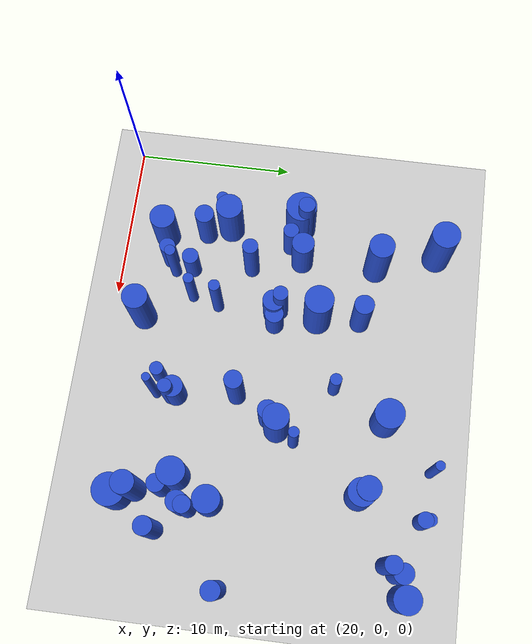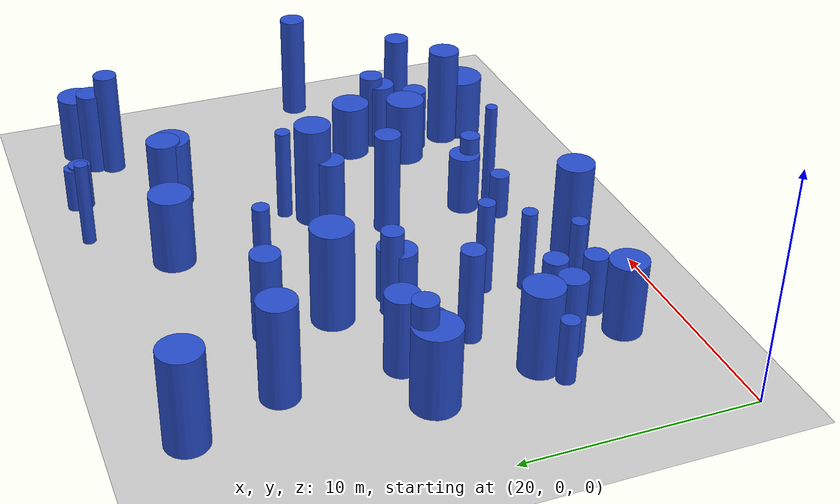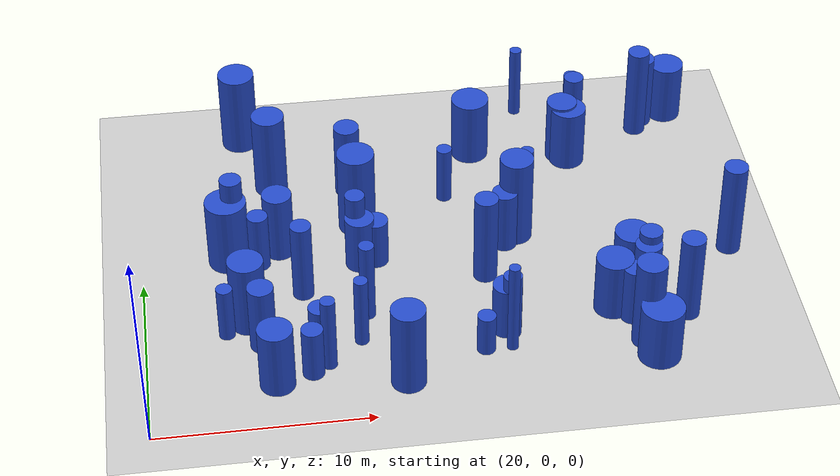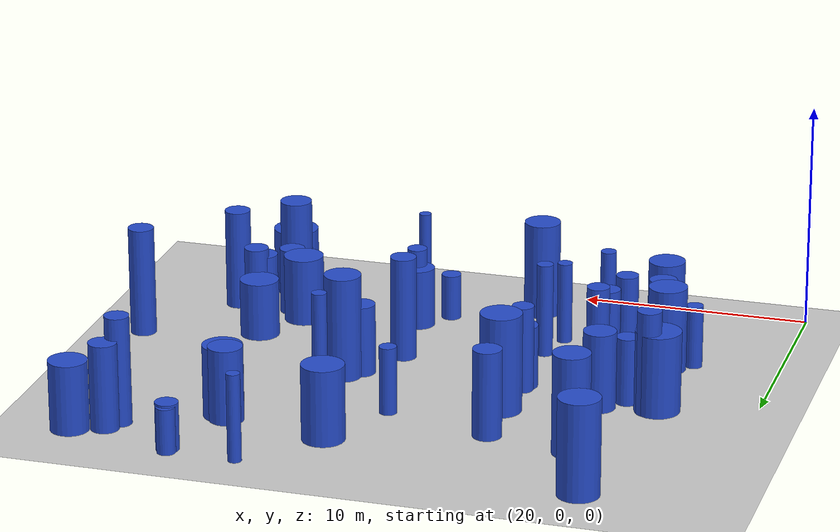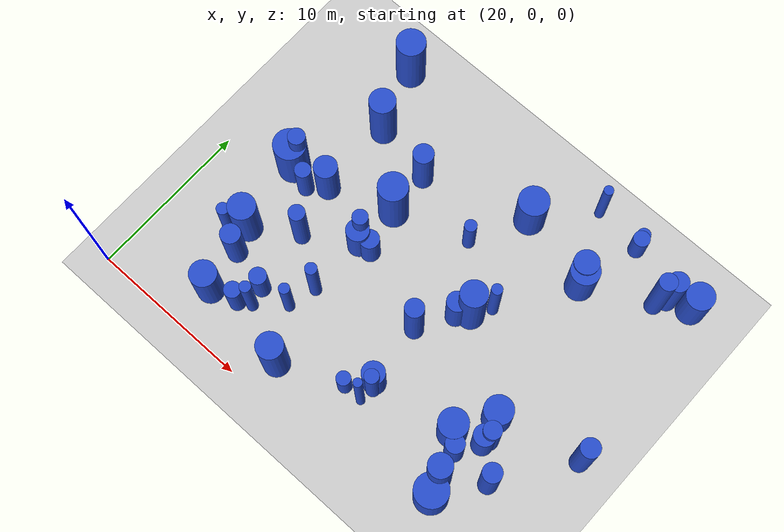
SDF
<sdf version="1.6">
 <world name="default">
  <model name="ground_plane">
   <static>1</static>
   <link name="link">
    <collision name="collision">
     <geometry><plane><normal>0 0 1</normal><size>100 100</size></plane></geometry>
     <surface><friction><ode><mu>100</mu><mu2>50</mu2></ode></friction></surface>
    </collision>
    <visual name="visual">
     <cast_shadows>0</cast_shadows>
     <geometry><plane><normal>0 0 1</normal><size>100 100</size></plane></geometry>
     <material>
      <script><uri>file://media/materials/scripts/gazebo.material</uri><name>Gazebo/Grey</name></script>
     </material>
    </visual>
   </link>
  </model>
  <model name="5">
   <static>0</static>
   <link name="link">
    <inertial>
     <mass>2</mass>
     <inertia><ixx>1.19895</ixx><ixy>0</ixy><ixz>0</ixz><iyy>1.19895</iyy><iyz>0</iyz><izz>0.27551</izz></inertia>
    </inertial>
    <collision name="collision">
     <geometry><cylinder><length>2.52333</length><radius>0.52489</radius></cylinder></geometry>
     <surface><contact><collide_without_contact>1</collide_without_contact></contact></surface>
    </collision>
    <visual name="visual">
     <geometry><cylinder><length>2.52333</length><radius>0.52489</radius></cylinder></geometry>
     <material>
      <script><uri>file://media/materials/scripts/gazebo.material</uri><name>Gazebo/Blue</name></script>
     </material>
    </visual>
    <gravity>0</gravity>
   </link>
   <pose>27.8719 4.70569 1.26166 0 -0 0</pose>
  </model>
  <model name="11">
   <static>0</static>
   <link name="link">
    <inertial>
     <mass>2</mass>
     <inertia><ixx>3.80874</ixx><ixy>0</ixy><ixz>0</ixz><iyy>3.80874</iyy><iyz>0</iyz><izz>0.499703</izz></inertia>
    </inertial>
    <collision name="collision">
     <geometry><cylinder><length>4.62097</length><radius>0.706896</radius></cylinder></geometry>
     <surface><contact><collide_without_contact>1</collide_without_contact></contact></surface>
    </collision>
    <visual name="visual">
     <geometry><cylinder><length>4.62097</length><radius>0.706896</radius></cylinder></geometry>
     <material>
      <script><uri>file://media/materials/scripts/gazebo.material</uri><name>Gazebo/Blue</name></script>
     </material>
    </visual>
    <gravity>0</gravity>
   </link>
   <pose>42.6481 3.33236 2.31048 0 -0 0</pose>
  </model>
  <model name="14">
   <static>0</static>
   <link name="link">
    <inertial>
     <mass>2</mass>
     <inertia><ixx>1.37401</ixx><ixy>0</ixy><ixz>0</ixz><iyy>1.37401</iyy><iyz>0</iyz><izz>0.143411</izz></inertia>
    </inertial>
    <collision name="collision">
     <geometry><cylinder><length>2.79532</length><radius>0.378697</radius></cylinder></geometry>
     <surface><contact><collide_without_contact>1</collide_without_contact></contact></surface>
    </collision>
    <visual name="visual">
     <geometry><cylinder><length>2.79532</length><radius>0.378697</radius></cylinder></geometry>
     <material>
      <script><uri>file://media/materials/scripts/gazebo.material</uri><name>Gazebo/Blue</name></script>
     </material>
    </visual>
    <gravity>0</gravity>
   </link>
   <pose>23.7113 6.20723 1.39766 0 -0 0</pose>
  </model>
  <model name="18">
   <static>0</static>
   <link name="link">
    <inertial>
     <mass>2</mass>
     <inertia>
      <ixx>0.755053</ixx>
      <ixy>0</ixy>
      <ixz>0</ixz>
      <iyy>0.755053</iyy>
      <iyz>0</iyz>
      <izz>0.161134</izz>
     </inertia>
    </inertial>
    <collision name="collision">
     <geometry><cylinder><length>2.01169</length><radius>0.401415</radius></cylinder></geometry>
     <surface><contact><collide_without_contact>1</collide_without_contact></contact></surface>
    </collision>
    <visual name="visual">
     <geometry><cylinder><length>2.01169</length><radius>0.401415</radius></cylinder></geometry>
     <material>
      <script><uri>file://media/materials/scripts/gazebo.material</uri><name>Gazebo/Blue</name></script>
     </material>
    </visual>
    <gravity>0</gravity>
   </link>
   <pose>42.3675 21.2109 1.00585 0 -0 0</pose>
  </model>
  <model name="22">
   <static>0</static>
   <link name="link">
    <inertial>
     <mass>2</mass>
     <inertia><ixx>2.26913</ixx><ixy>0</ixy><ixz>0</ixz><iyy>2.26913</iyy><iyz>0</iyz><izz>0.505011</izz></inertia>
    </inertial>
    <collision name="collision">
     <geometry><cylinder><length>3.47847</length><radius>0.710641</radius></cylinder></geometry>
     <surface><contact><collide_without_contact>1</collide_without_contact></contact></surface>
    </collision>
    <visual name="visual">
     <geometry><cylinder><length>3.47847</length><radius>0.710641</radius></cylinder></geometry>
     <material>
      <script><uri>file://media/materials/scripts/gazebo.material</uri><name>Gazebo/Blue</name></script>
     </material>
    </visual>
    <gravity>0</gravity>
   </link>
   <pose>26.527 11.7667 1.73924 0 -0 0</pose>
  </model>
  <model name="25">
   <static>0</static>
   <link name="link">
    <inertial>
     <mass>2</mass>
     <inertia><ixx>3.99631</ixx><ixy>0</ixy><ixz>0</ixz><iyy>3.99631</iyy><iyz>0</iyz><izz>0.280628</izz></inertia>
    </inertial>
    <collision name="collision">
     <geometry><cylinder><length>4.80998</length><radius>0.529744</radius></cylinder></geometry>
     <surface><contact><collide_without_contact>1</collide_without_contact></contact></surface>
    </collision>
    <visual name="visual">
     <geometry><cylinder><length>4.80998</length><radius>0.529744</radius></cylinder></geometry>
     <material>
      <script><uri>file://media/materials/scripts/gazebo.material</uri><name>Gazebo/Blue</name></script>
     </material>
    </visual>
    <gravity>0</gravity>
   </link>
   <pose>45.2657 18.9256 2.40499 0 -0 0</pose>
  </model>
  <model name="27">
   <static>0</static>
   <link name="link">
    <inertial>
     <mass>2</mass>
     <inertia><ixx>1.44612</ixx><ixy>0</ixy><ixz>0</ixz><iyy>1.44612</iyy><iyz>0</iyz><izz>0.468528</izz></inertia>
    </inertial>
    <collision name="collision">
     <geometry><cylinder><length>2.69651</length><radius>0.684491</radius></cylinder></geometry>
     <surface><contact><collide_without_contact>1</collide_without_contact></contact></surface>
    </collision>
    <visual name="visual">
     <geometry><cylinder><length>2.69651</length><radius>0.684491</radius></cylinder></geometry>
     <material>
      <script><uri>file://media/materials/scripts/gazebo.material</uri><name>Gazebo/Blue</name></script>
     </material>
    </visual>
    <gravity>0</gravity>
   </link>
   <pose>36.4301 4.9127 1.34825 0 -0 0</pose>
  </model>
  <model name="36">
   <static>0</static>
   <link name="link">
    <inertial>
     <mass>2</mass>
     <inertia><ixx>3.51883</ixx><ixy>0</ixy><ixz>0</ixz><iyy>3.51883</iyy><iyz>0</iyz><izz>0.320908</izz></inertia>
    </inertial>
    <collision name="collision">
     <geometry><cylinder><length>4.4889</length><radius>0.566488</radius></cylinder></geometry>
     <surface><contact><collide_without_contact>1</collide_without_contact></contact></surface>
    </collision>
    <visual name="visual">
     <geometry><cylinder><length>4.4889</length><radius>0.566488</radius></cylinder></geometry>
     <material>
      <script><uri>file://media/materials/scripts/gazebo.material</uri><name>Gazebo/Blue</name></script>
     </material>
    </visual>
    <gravity>0</gravity>
   </link>
   <pose>44.884 4.86893 2.24445 0 -0 0</pose>
  </model>
  <model name="43">
   <static>0</static>
   <link name="link">
    <inertial>
     <mass>2</mass>
     <inertia>
      <ixx>3.81452</ixx>
      <ixy>0</ixy>
      <ixz>0</ixz>
      <iyy>3.81452</iyy>
      <iyz>0</iyz>
      <izz>0.0700208</izz>
     </inertia>
    </inertial>
    <collision name="collision">
     <geometry><cylinder><length>4.76204</length><radius>0.264614</radius></cylinder></geometry>
     <surface><contact><collide_without_contact>1</collide_without_contact></contact></surface>
    </collision>
    <visual name="visual">
     <geometry><cylinder><length>4.76204</length><radius>0.264614</radius></cylinder></geometry>
     <material>
      <script><uri>file://media/materials/scripts/gazebo.material</uri><name>Gazebo/Blue</name></script>
     </material>
    </visual>
    <gravity>0</gravity>
   </link>
   <pose>36.5145 3.67072 2.38102 0 -0 0</pose>
  </model>
  <model name="57">
   <static>0</static>
   <link name="link">
    <inertial>
     <mass>2</mass>
     <inertia><ixx>1.41533</ixx><ixy>0</ixy><ixz>0</ixz><iyy>1.41533</iyy><iyz>0</iyz><izz>0.380508</izz></inertia>
    </inertial>
    <collision name="collision">
     <geometry><cylinder><length>2.71117</length><radius>0.616853</radius></cylinder></geometry>
     <surface><contact><collide_without_contact>1</collide_without_contact></contact></surface>
    </collision>
    <visual name="visual">
     <geometry><cylinder><length>2.71117</length><radius>0.616853</radius></cylinder></geometry>
     <material>
      <script><uri>file://media/materials/scripts/gazebo.material</uri><name>Gazebo/Blue</name></script>
     </material>
    </visual>
    <gravity>0</gravity>
   </link>
   <pose>26.4776 16.4928 1.35559 0 -0 0</pose>
  </model>
  <model name="66">
   <static>0</static>
   <link name="link">
    <inertial>
     <mass>2</mass>
     <inertia><ixx>2.97876</ixx><ixy>0</ixy><ixz>0</ixz><iyy>2.97876</iyy><iyz>0</iyz><izz>0.129571</izz></inertia>
    </inertial>
    <collision name="collision">
     <geometry><cylinder><length>4.18137</length><radius>0.359959</radius></cylinder></geometry>
     <surface><contact><collide_without_contact>1</collide_without_contact></contact></surface>
    </collision>
    <visual name="visual">
     <geometry><cylinder><length>4.18137</length><radius>0.359959</radius></cylinder></geometry>
     <material>
      <script><uri>file://media/materials/scripts/gazebo.material</uri><name>Gazebo/Blue</name></script>
     </material>
    </visual>
    <gravity>0</gravity>
   </link>
   <pose>30.227 6.70811 2.09069 0 -0 0</pose>
  </model>
  <model name="72">
   <static>0</static>
   <link name="link">
    <inertial>
     <mass>2</mass>
     <inertia><ixx>2.09914</ixx><ixy>0</ixy><ixz>0</ixz><iyy>2.09914</iyy><iyz>0</iyz><izz>0.55611</izz></inertia>
    </inertial>
    <collision name="collision">
     <geometry><cylinder><length>3.30553</length><radius>0.745728</radius></cylinder></geometry>
     <surface><contact><collide_without_contact>1</collide_without_contact></contact></surface>
    </collision>
    <visual name="visual">
     <geometry><cylinder><length>3.30553</length><radius>0.745728</radius></cylinder></geometry>
     <material>
      <script><uri>file://media/materials/scripts/gazebo.material</uri><name>Gazebo/Blue</name></script>
     </material>
    </visual>
    <gravity>0</gravity>
   </link>
   <pose>41.124 17.3426 1.65277 0 -0 0</pose>
  </model>
  <model name="73">
   <static>0</static>
   <link name="link">
    <inertial>
     <mass>2</mass>
     <inertia><ixx>3.57015</ixx><ixy>0</ixy><ixz>0</ixz><iyy>3.57015</iyy><iyz>0</iyz><izz>0.638733</izz></inertia>
    </inertial>
    <collision name="collision">
     <geometry><cylinder><length>4.41641</length><radius>0.799207</radius></cylinder></geometry>
     <surface><contact><collide_without_contact>1</collide_without_contact></contact></surface>
    </collision>
    <visual name="visual">
     <geometry><cylinder><length>4.41641</length><radius>0.799207</radius></cylinder></geometry>
     <material>
      <script><uri>file://media/materials/scripts/gazebo.material</uri><name>Gazebo/Blue</name></script>
     </material>
    </visual>
    <gravity>0</gravity>
   </link>
   <pose>26.4993 16.6319 2.20821 0 -0 0</pose>
  </model>
  <model name="74">
   <static>0</static>
   <link name="link">
    <inertial>
     <mass>2</mass>
     <inertia><ixx>3.74291</ixx><ixy>0</ixy><ixz>0</ixz><iyy>3.74291</iyy><iyz>0</iyz><izz>0.319595</izz></inertia>
    </inertial>
    <collision name="collision">
     <geometry><cylinder><length>4.63667</length><radius>0.565327</radius></cylinder></geometry>
     <surface><contact><collide_without_contact>1</collide_without_contact></contact></surface>
    </collision>
    <visual name="visual">
     <geometry><cylinder><length>4.63667</length><radius>0.565327</radius></cylinder></geometry>
     <material>
      <script><uri>file://media/materials/scripts/gazebo.material</uri><name>Gazebo/Blue</name></script>
     </material>
    </visual>
    <gravity>0</gravity>
   </link>
   <pose>36.0139 8.72628 2.31833 0 -0 0</pose>
  </model>
  <model name="82">
   <static>0</static>
   <link name="link">
    <inertial>
     <mass>2</mass>
     <inertia><ixx>1.61235</ixx><ixy>0</ixy><ixz>0</ixz><iyy>1.61235</iyy><iyz>0</iyz><izz>0.244371</izz></inertia>
    </inertial>
    <collision name="collision">
     <geometry><cylinder><length>2.99014</length><radius>0.494338</radius></cylinder></geometry>
     <surface><contact><collide_without_contact>1</collide_without_contact></contact></surface>
    </collision>
    <visual name="visual">
     <geometry><cylinder><length>2.99014</length><radius>0.494338</radius></cylinder></geometry>
     <material>
      <script><uri>file://media/materials/scripts/gazebo.material</uri><name>Gazebo/Blue</name></script>
     </material>
    </visual>
    <gravity>0</gravity>
   </link>
   <pose>25.5362 10.8942 1.49507 0 -0 0</pose>
  </model>
  <model name="86">
   <static>0</static>
   <link name="link">
    <inertial>
     <mass>2</mass>
     <inertia><ixx>2.28266</ixx><ixy>0</ixy><ixz>0</ixz><iyy>2.28266</iyy><iyz>0</iyz><izz>0.845902</izz></inertia>
    </inertial>
    <collision name="collision">
     <geometry><cylinder><length>3.3404</length><radius>0.919729</radius></cylinder></geometry>
     <surface><contact><collide_without_contact>1</collide_without_contact></contact></surface>
    </collision>
    <visual name="visual">
     <geometry><cylinder><length>3.3404</length><radius>0.919729</radius></cylinder></geometry>
     <material>
      <script><uri>file://media/materials/scripts/gazebo.material</uri><name>Gazebo/Blue</name></script>
     </material>
    </visual>
    <gravity>0</gravity>
   </link>
   <pose>36.6208 18.1374 1.6702 0 -0 0</pose>
  </model>
  <model name="94">
   <static>0</static>
   <link name="link">
    <inertial>
     <mass>2</mass>
     <inertia><ixx>2.17349</ixx><ixy>0</ixy><ixz>0</ixz><iyy>2.17349</iyy><iyz>0</iyz><izz>0.653674</izz></inertia>
    </inertial>
    <collision name="collision">
     <geometry><cylinder><length>3.32865</length><radius>0.808501</radius></cylinder></geometry>
     <surface><contact><collide_without_contact>1</collide_without_contact></contact></surface>
    </collision>
    <visual name="visual">
     <geometry><cylinder><length>3.32865</length><radius>0.808501</radius></cylinder></geometry>
     <material>
      <script><uri>file://media/materials/scripts/gazebo.material</uri><name>Gazebo/Blue</name></script>
     </material>
    </visual>
    <gravity>0</gravity>
   </link>
   <pose>25.7537 2.67026 1.66433 0 -0 0</pose>
  </model>
  <model name="108">
   <static>0</static>
   <link name="link">
    <inertial>
     <mass>2</mass>
     <inertia><ixx>1.89458</ixx><ixy>0</ixy><ixz>0</ixz><iyy>1.89458</iyy><iyz>0</iyz><izz>0.771832</izz></inertia>
    </inertial>
    <collision name="collision">
     <geometry><cylinder><length>3.00865</length><radius>0.87854</radius></cylinder></geometry>
     <surface><contact><collide_without_contact>1</collide_without_contact></contact></surface>
    </collision>
    <visual name="visual">
     <geometry><cylinder><length>3.00865</length><radius>0.87854</radius></cylinder></geometry>
     <material>
      <script><uri>file://media/materials/scripts/gazebo.material</uri><name>Gazebo/Blue</name></script>
     </material>
    </visual>
    <gravity>0</gravity>
   </link>
   <pose>41.5256 5.71485 1.50433 0 -0 0</pose>
  </model>
  <model name="120">
   <static>0</static>
   <link name="link">
    <inertial>
     <mass>2</mass>
     <inertia><ixx>2.54871</ixx><ixy>0</ixy><ixz>0</ixz><iyy>2.54871</iyy><iyz>0</iyz><izz>0.224282</izz></inertia>
    </inertial>
    <collision name="collision">
     <geometry><cylinder><length>3.82354</length><radius>0.473584</radius></cylinder></geometry>
     <surface><contact><collide_without_contact>1</collide_without_contact></contact></surface>
    </collision>
    <visual name="visual">
     <geometry><cylinder><length>3.82354</length><radius>0.473584</radius></cylinder></geometry>
     <material>
      <script><uri>file://media/materials/scripts/gazebo.material</uri><name>Gazebo/Blue</name></script>
     </material>
    </visual>
    <gravity>0</gravity>
   </link>
   <pose>30.1137 10.7823 1.91177 0 -0 0</pose>
  </model>
  <model name="126">
   <static>0</static>
   <link name="link">
    <inertial>
     <mass>2</mass>
     <inertia><ixx>2.71554</ixx><ixy>0</ixy><ixz>0</ixz><iyy>2.71554</iyy><iyz>0</iyz><izz>0.387515</izz></inertia>
    </inertial>
    <collision name="collision">
     <geometry><cylinder><length>3.88982</length><radius>0.622507</radius></cylinder></geometry>
     <surface><contact><collide_without_contact>1</collide_without_contact></contact></surface>
    </collision>
    <visual name="visual">
     <geometry><cylinder><length>3.88982</length><radius>0.622507</radius></cylinder></geometry>
     <material>
      <script><uri>file://media/materials/scripts/gazebo.material</uri><name>Gazebo/Blue</name></script>
     </material>
    </visual>
    <gravity>0</gravity>
   </link>
   <pose>30.2394 15.9447 1.94491 0 -0 0</pose>
  </model>
  <model name="134">
   <static>0</static>
   <link name="link">
    <inertial>
     <mass>2</mass>
     <inertia>
      <ixx>0.788618</ixx>
      <ixy>0</ixy>
      <ixz>0</ixz>
      <iyy>0.788618</iyy>
      <iyz>0</iyz>
      <izz>0.186006</izz>
     </inertia>
    </inertial>
    <collision name="collision">
     <geometry><cylinder><length>2.04296</length><radius>0.431284</radius></cylinder></geometry>
     <surface><contact><collide_without_contact>1</collide_without_contact></contact></surface>
    </collision>
    <visual name="visual">
     <geometry><cylinder><length>2.04296</length><radius>0.431284</radius></cylinder></geometry>
     <material>
      <script><uri>file://media/materials/scripts/gazebo.material</uri><name>Gazebo/Blue</name></script>
     </material>
    </visual>
    <gravity>0</gravity>
   </link>
   <pose>35.3037 3.69044 1.02148 0 -0 0</pose>
  </model>
  <model name="141">
   <static>0</static>
   <link name="link">
    <inertial>
     <mass>2</mass>
     <inertia><ixx>2.20126</ixx><ixy>0</ixy><ixz>0</ixz><iyy>2.20126</iyy><iyz>0</iyz><izz>0.372364</izz></inertia>
    </inertial>
    <collision name="collision">
     <geometry><cylinder><length>3.47714</length><radius>0.610216</radius></cylinder></geometry>
     <surface><contact><collide_without_contact>1</collide_without_contact></contact></surface>
    </collision>
    <visual name="visual">
     <geometry><cylinder><length>3.47714</length><radius>0.610216</radius></cylinder></geometry>
     <material>
      <script><uri>file://media/materials/scripts/gazebo.material</uri><name>Gazebo/Blue</name></script>
     </material>
    </visual>
    <gravity>0</gravity>
   </link>
   <pose>25.3082 5.31481 1.73857 0 -0 0</pose>
  </model>
  <model name="142">
   <static>0</static>
   <link name="link">
    <inertial>
     <mass>2</mass>
     <inertia><ixx>2.94757</ixx><ixy>0</ixy><ixz>0</ixz><iyy>2.94757</iyy><iyz>0</iyz><izz>0.109963</izz></inertia>
    </inertial>
    <collision name="collision">
     <geometry><cylinder><length>4.166</length><radius>0.331607</radius></cylinder></geometry>
     <surface><contact><collide_without_contact>1</collide_without_contact></contact></surface>
    </collision>
    <visual name="visual">
     <geometry><cylinder><length>4.166</length><radius>0.331607</radius></cylinder></geometry>
     <material>
      <script><uri>file://media/materials/scripts/gazebo.material</uri><name>Gazebo/Blue</name></script>
     </material>
    </visual>
    <gravity>0</gravity>
   </link>
   <pose>38.5649 12.612 2.083 0 -0 0</pose>
  </model>
  <model name="146">
   <static>0</static>
   <link name="link">
    <inertial>
     <mass>2</mass>
     <inertia>
      <ixx>2.51646</ixx>
      <ixy>0</ixy>
      <ixz>0</ixz>
      <iyy>2.51646</iyy>
      <iyz>0</iyz>
      <izz>0.0857115</izz>
     </inertia>
    </inertial>
    <collision name="collision">
     <geometry><cylinder><length>3.85248</length><radius>0.292765</radius></cylinder></geometry>
     <surface><contact><collide_without_contact>1</collide_without_contact></contact></surface>
    </collision>
    <visual name="visual">
     <geometry><cylinder><length>3.85248</length><radius>0.292765</radius></cylinder></geometry>
     <material>
      <script><uri>file://media/materials/scripts/gazebo.material</uri><name>Gazebo/Blue</name></script>
     </material>
    </visual>
    <gravity>0</gravity>
   </link>
   <pose>39.4106 21.2297 1.92624 0 -0 0</pose>
  </model>
  <model name="158">
   <static>0</static>
   <link name="link">
    <inertial>
     <mass>2</mass>
     <inertia><ixx>1.29846</ixx><ixy>0</ixy><ixz>0</ixz><iyy>1.29846</iyy><iyz>0</iyz><izz>0.251787</izz></inertia>
    </inertial>
    <collision name="collision">
     <geometry><cylinder><length>2.65243</length><radius>0.501784</radius></cylinder></geometry>
     <surface><contact><collide_without_contact>1</collide_without_contact></contact></surface>
    </collision>
    <visual name="visual">
     <geometry><cylinder><length>2.65243</length><radius>0.501784</radius></cylinder></geometry>
     <material>
      <script><uri>file://media/materials/scripts/gazebo.material</uri><name>Gazebo/Blue</name></script>
     </material>
    </visual>
    <gravity>0</gravity>
   </link>
   <pose>27.4067 3.17067 1.32622 0 -0 0</pose>
  </model>
  <model name="159">
   <static>0</static>
   <link name="link">
    <inertial>
     <mass>2</mass>
     <inertia><ixx>1.47575</ixx><ixy>0</ixy><ixz>0</ixz><iyy>1.47575</iyy><iyz>0</iyz><izz>0.742642</izz></inertia>
    </inertial>
    <collision name="collision">
     <geometry><cylinder><length>2.57422</length><radius>0.861767</radius></cylinder></geometry>
     <surface><contact><collide_without_contact>1</collide_without_contact></contact></surface>
    </collision>
    <visual name="visual">
     <geometry><cylinder><length>2.57422</length><radius>0.861767</radius></cylinder></geometry>
     <material>
      <script><uri>file://media/materials/scripts/gazebo.material</uri><name>Gazebo/Blue</name></script>
     </material>
    </visual>
    <gravity>0</gravity>
   </link>
   <pose>42.8436 7.96022 1.28711 0 -0 0</pose>
  </model>
  <model name="160">
   <static>0</static>
   <link name="link">
    <inertial>
     <mass>2</mass>
     <inertia><ixx>2.06953</ixx><ixy>0</ixy><ixz>0</ixz><iyy>2.06953</iyy><iyz>0</iyz><izz>0.748875</izz></inertia>
    </inertial>
    <collision name="collision">
     <geometry><cylinder><length>3.18913</length><radius>0.865375</radius></cylinder></geometry>
     <surface><contact><collide_without_contact>1</collide_without_contact></contact></surface>
    </collision>
    <visual name="visual">
     <geometry><cylinder><length>3.18913</length><radius>0.865375</radius></cylinder></geometry>
     <material>
      <script><uri>file://media/materials/scripts/gazebo.material</uri><name>Gazebo/Blue</name></script>
     </material>
    </visual>
    <gravity>0</gravity>
   </link>
   <pose>41.3788 16.9585 1.59456 0 -0 0</pose>
  </model>
  <model name="168">
   <static>0</static>
   <link name="link">
    <inertial>
     <mass>2</mass>
     <inertia><ixx>3.91282</ixx><ixy>0</ixy><ixz>0</ixz><iyy>3.91282</iyy><iyz>0</iyz><izz>0.64338</izz></inertia>
    </inertial>
    <collision name="collision">
     <geometry><cylinder><length>4.64185</length><radius>0.80211</radius></cylinder></geometry>
     <surface><contact><collide_without_contact>1</collide_without_contact></contact></surface>
    </collision>
    <visual name="visual">
     <geometry><cylinder><length>4.64185</length><radius>0.80211</radius></cylinder></geometry>
     <material>
      <script><uri>file://media/materials/scripts/gazebo.material</uri><name>Gazebo/Blue</name></script>
     </material>
    </visual>
    <gravity>0</gravity>
   </link>
   <pose>37.8783 11.4759 2.32093 0 -0 0</pose>
  </model>
  <model name="170">
   <static>0</static>
   <link name="link">
    <inertial>
     <mass>2</mass>
     <inertia><ixx>4.14608</ixx><ixy>0</ixy><ixz>0</ixz><iyy>4.14608</iyy><iyz>0</iyz><izz>0.325372</izz></inertia>
    </inertial>
    <collision name="collision">
     <geometry><cylinder><length>4.8888</length><radius>0.570414</radius></cylinder></geometry>
     <surface><contact><collide_without_contact>1</collide_without_contact></contact></surface>
    </collision>
    <visual name="visual">
     <geometry><cylinder><length>4.8888</length><radius>0.570414</radius></cylinder></geometry>
     <material>
      <script><uri>file://media/materials/scripts/gazebo.material</uri><name>Gazebo/Blue</name></script>
     </material>
    </visual>
    <gravity>0</gravity>
   </link>
   <pose>47.853 9.16861 2.4444 0 -0 0</pose>
  </model>
  <model name="173">
   <static>0</static>
   <link name="link">
    <inertial>
     <mass>2</mass>
     <inertia><ixx>2.65741</ixx><ixy>0</ixy><ixz>0</ixz><iyy>2.65741</iyy><iyz>0</iyz><izz>0.370708</izz></inertia>
    </inertial>
    <collision name="collision">
     <geometry><cylinder><length>3.85127</length><radius>0.608858</radius></cylinder></geometry>
     <surface><contact><collide_without_contact>1</collide_without_contact></contact></surface>
    </collision>
    <visual name="visual">
     <geometry><cylinder><length>3.85127</length><radius>0.608858</radius></cylinder></geometry>
     <material>
      <script><uri>file://media/materials/scripts/gazebo.material</uri><name>Gazebo/Blue</name></script>
     </material>
    </visual>
    <gravity>0</gravity>
   </link>
   <pose>45.6421 19.6514 1.92564 0 -0 0</pose>
  </model>
  <model name="176">
   <static>0</static>
   <link name="link">
    <inertial>
     <mass>2</mass>
     <inertia><ixx>2.53835</ixx><ixy>0</ixy><ixz>0</ixz><iyy>2.53835</iyy><iyz>0</iyz><izz>0.118597</izz></inertia>
    </inertial>
    <collision name="collision">
     <geometry><cylinder><length>3.85672</length><radius>0.34438</radius></cylinder></geometry>
     <surface><contact><collide_without_contact>1</collide_without_contact></contact></surface>
    </collision>
    <visual name="visual">
     <geometry><cylinder><length>3.85672</length><radius>0.34438</radius></cylinder></geometry>
     <material>
      <script><uri>file://media/materials/scripts/gazebo.material</uri><name>Gazebo/Blue</name></script>
     </material>
    </visual>
    <gravity>0</gravity>
   </link>
   <pose>28.1689 3.60871 1.92836 0 -0 0</pose>
  </model>
  <model name="179">
   <static>0</static>
   <link name="link">
    <inertial>
     <mass>2</mass>
     <inertia>
      <ixx>0.859238</ixx>
      <ixy>0</ixy>
      <ixz>0</ixz>
      <iyy>0.859238</iyy>
      <iyz>0</iyz>
      <izz>0.245358</izz>
     </inertia>
    </inertial>
    <collision name="collision">
     <geometry><cylinder><length>2.10223</length><radius>0.495337</radius></cylinder></geometry>
     <surface><contact><collide_without_contact>1</collide_without_contact></contact></surface>
    </collision>
    <visual name="visual">
     <geometry><cylinder><length>2.10223</length><radius>0.495337</radius></cylinder></geometry>
     <material>
      <script><uri>file://media/materials/scripts/gazebo.material</uri><name>Gazebo/Blue</name></script>
     </material>
    </visual>
    <gravity>0</gravity>
   </link>
   <pose>42.4258 20.9007 1.05111 0 -0 0</pose>
  </model>
  <model name="183">
   <static>0</static>
   <link name="link">
    <inertial>
     <mass>2</mass>
     <inertia><ixx>3.67163</ixx><ixy>0</ixy><ixz>0</ixz><iyy>3.67163</iyy><iyz>0</iyz><izz>0.271582</izz></inertia>
    </inertial>
    <collision name="collision">
     <geometry><cylinder><length>4.60598</length><radius>0.521135</radius></cylinder></geometry>
     <surface><contact><collide_without_contact>1</collide_without_contact></contact></surface>
    </collision>
    <visual name="visual">
     <geometry><cylinder><length>4.60598</length><radius>0.521135</radius></cylinder></geometry>
     <material>
      <script><uri>file://media/materials/scripts/gazebo.material</uri><name>Gazebo/Blue</name></script>
     </material>
    </visual>
    <gravity>0</gravity>
   </link>
   <pose>24.428 11.7393 2.30299 0 -0 0</pose>
  </model>
  <model name="184">
   <static>0</static>
   <link name="link">
    <inertial>
     <mass>2</mass>
     <inertia><ixx>2.09227</ixx><ixy>0</ixy><ixz>0</ixz><iyy>2.09227</iyy><iyz>0</iyz><izz>0.189244</izz></inertia>
    </inertial>
    <collision name="collision">
     <geometry><cylinder><length>3.46206</length><radius>0.435022</radius></cylinder></geometry>
     <surface><contact><collide_without_contact>1</collide_without_contact></contact></surface>
    </collision>
    <visual name="visual">
     <geometry><cylinder><length>3.46206</length><radius>0.435022</radius></cylinder></geometry>
     <material>
      <script><uri>file://media/materials/scripts/gazebo.material</uri><name>Gazebo/Blue</name></script>
     </material>
    </visual>
    <gravity>0</gravity>
   </link>
   <pose>36.6118 4.59693 1.73103 0 -0 0</pose>
  </model>
  <model name="187">
   <static>0</static>
   <link name="link">
    <inertial>
     <mass>2</mass>
     <inertia><ixx>2.63857</ixx><ixy>0</ixy><ixz>0</ixz><iyy>2.63857</iyy><iyz>0</iyz><izz>0.964066</izz></inertia>
    </inertial>
    <collision name="collision">
     <geometry><cylinder><length>3.59711</length><radius>0.981869</radius></cylinder></geometry>
     <surface><contact><collide_without_contact>1</collide_without_contact></contact></surface>
    </collision>
    <visual name="visual">
     <geometry><cylinder><length>3.59711</length><radius>0.981869</radius></cylinder></geometry>
     <material>
      <script><uri>file://media/materials/scripts/gazebo.material</uri><name>Gazebo/Blue</name></script>
     </material>
    </visual>
    <gravity>0</gravity>
   </link>
   <pose>24.1094 11.3832 1.79856 0 -0 0</pose>
  </model>
  <model name="199">
   <static>0</static>
   <link name="link">
    <inertial>
     <mass>2</mass>
     <inertia><ixx>1.5298</ixx><ixy>0</ixy><ixz>0</ixz><iyy>1.5298</iyy><iyz>0</iyz><izz>0.480172</izz></inertia>
    </inertial>
    <collision name="collision">
     <geometry><cylinder><length>2.78178</length><radius>0.692945</radius></cylinder></geometry>
     <surface><contact><collide_without_contact>1</collide_without_contact></contact></surface>
    </collision>
    <visual name="visual">
     <geometry><cylinder><length>2.78178</length><radius>0.692945</radius></cylinder></geometry>
     <material>
      <script><uri>file://media/materials/scripts/gazebo.material</uri><name>Gazebo/Blue</name></script>
     </material>
    </visual>
    <gravity>0</gravity>
   </link>
   <pose>30.2625 10.3596 1.39089 0 -0 0</pose>
  </model>
  <model name="200">
   <static>0</static>
   <link name="link">
    <inertial>
     <mass>2</mass>
     <inertia><ixx>2.27171</ixx><ixy>0</ixy><ixz>0</ixz><iyy>2.27171</iyy><iyz>0</iyz><izz>0.107901</izz></inertia>
    </inertial>
    <collision name="collision">
     <geometry><cylinder><length>3.64781</length><radius>0.328483</radius></cylinder></geometry>
     <surface><contact><collide_without_contact>1</collide_without_contact></contact></surface>
    </collision>
    <visual name="visual">
     <geometry><cylinder><length>3.64781</length><radius>0.328483</radius></cylinder></geometry>
     <material>
      <script><uri>file://media/materials/scripts/gazebo.material</uri><name>Gazebo/Blue</name></script>
     </material>
    </visual>
    <gravity>0</gravity>
   </link>
   <pose>29.7748 4.99236 1.82391 0 -0 0</pose>
  </model>
  <model name="207">
   <static>0</static>
   <link name="link">
    <inertial>
     <mass>2</mass>
     <inertia><ixx>1.64041</ixx><ixy>0</ixy><ixz>0</ixz><iyy>1.64041</iyy><iyz>0</iyz><izz>0.317398</izz></inertia>
    </inertial>
    <collision name="collision">
     <geometry><cylinder><length>2.98165</length><radius>0.563381</radius></cylinder></geometry>
     <surface><contact><collide_without_contact>1</collide_without_contact></contact></surface>
    </collision>
    <visual name="visual">
     <geometry><cylinder><length>2.98165</length><radius>0.563381</radius></cylinder></geometry>
     <material>
      <script><uri>file://media/materials/scripts/gazebo.material</uri><name>Gazebo/Blue</name></script>
     </material>
    </visual>
    <gravity>0</gravity>
   </link>
   <pose>42.3185 4.94348 1.49083 0 -0 0</pose>
  </model>
  <model name="212">
   <static>0</static>
   <link name="link">
    <inertial>
     <mass>2</mass>
     <inertia><ixx>2.74728</ixx><ixy>0</ixy><ixz>0</ixz><iyy>2.74728</iyy><iyz>0</iyz><izz>0.69755</izz></inertia>
    </inertial>
    <collision name="collision">
     <geometry><cylinder><length>3.79355</length><radius>0.835195</radius></cylinder></geometry>
     <surface><contact><collide_without_contact>1</collide_without_contact></contact></surface>
    </collision>
    <visual name="visual">
     <geometry><cylinder><length>3.79355</length><radius>0.835195</radius></cylinder></geometry>
     <material>
      <script><uri>file://media/materials/scripts/gazebo.material</uri><name>Gazebo/Blue</name></script>
     </material>
    </visual>
    <gravity>0</gravity>
   </link>
   <pose>24.7513 6.84208 1.89678 0 -0 0</pose>
  </model>
  <model name="215">
   <static>0</static>
   <link name="link">
    <inertial>
     <mass>2</mass>
     <inertia><ixx>1.82664</ixx><ixy>0</ixy><ixz>0</ixz><iyy>1.82664</iyy><iyz>0</iyz><izz>0.408005</izz></inertia>
    </inertial>
    <collision name="collision">
     <geometry><cylinder><length>3.12023</length><radius>0.638753</radius></cylinder></geometry>
     <surface><contact><collide_without_contact>1</collide_without_contact></contact></surface>
    </collision>
    <visual name="visual">
     <geometry><cylinder><length>3.12023</length><radius>0.638753</radius></cylinder></geometry>
     <material>
      <script><uri>file://media/materials/scripts/gazebo.material</uri><name>Gazebo/Blue</name></script>
     </material>
    </visual>
    <gravity>0</gravity>
   </link>
   <pose>43.2111 6.31714 1.56011 0 -0 0</pose>
  </model>
  <model name="225">
   <static>0</static>
   <link name="link">
    <inertial>
     <mass>2</mass>
     <inertia><ixx>1.18217</ixx><ixy>0</ixy><ixz>0</ixz><iyy>1.18217</iyy><iyz>0</iyz><izz>0.348258</izz></inertia>
    </inertial>
    <collision name="collision">
     <geometry><cylinder><length>2.45932</length><radius>0.590134</radius></cylinder></geometry>
     <surface><contact><collide_without_contact>1</collide_without_contact></contact></surface>
    </collision>
    <visual name="visual">
     <geometry><cylinder><length>2.45932</length><radius>0.590134</radius></cylinder></geometry>
     <material>
      <script><uri>file://media/materials/scripts/gazebo.material</uri><name>Gazebo/Blue</name></script>
     </material>
    </visual>
    <gravity>0</gravity>
   </link>
   <pose>31.038 10.4921 1.22966 0 -0 0</pose>
  </model>
  <model name="226">
   <static>0</static>
   <link name="link">
    <inertial>
     <mass>2</mass>
     <inertia><ixx>1.93903</ixx><ixy>0</ixy><ixz>0</ixz><iyy>1.93903</iyy><iyz>0</iyz><izz>0.701202</izz></inertia>
    </inertial>
    <collision name="collision">
     <geometry><cylinder><length>3.08716</length><radius>0.837378</radius></cylinder></geometry>
     <surface><contact><collide_without_contact>1</collide_without_contact></contact></surface>
    </collision>
    <visual name="visual">
     <geometry><cylinder><length>3.08716</length><radius>0.837378</radius></cylinder></geometry>
     <material>
      <script><uri>file://media/materials/scripts/gazebo.material</uri><name>Gazebo/Blue</name></script>
     </material>
    </visual>
    <gravity>0</gravity>
   </link>
   <pose>47.0281 20.0922 1.54358 0 -0 0</pose>
  </model>
  <model name="227">
   <static>0</static>
   <link name="link">
    <inertial>
     <mass>2</mass>
     <inertia><ixx>1.84648</ixx><ixy>0</ixy><ixz>0</ixz><iyy>1.84648</iyy><iyz>0</iyz><izz>0.377681</izz></inertia>
    </inertial>
    <collision name="collision">
     <geometry><cylinder><length>3.15371</length><radius>0.614557</radius></cylinder></geometry>
     <surface><contact><collide_without_contact>1</collide_without_contact></contact></surface>
    </collision>
    <visual name="visual">
     <geometry><cylinder><length>3.15371</length><radius>0.614557</radius></cylinder></geometry>
     <material>
      <script><uri>file://media/materials/scripts/gazebo.material</uri><name>Gazebo/Blue</name></script>
     </material>
    </visual>
    <gravity>0</gravity>
   </link>
   <pose>37.2464 10.8875 1.57685 0 -0 0</pose>
  </model>
  <model name="229">
   <static>0</static>
   <link name="link">
    <inertial>
     <mass>2</mass>
     <inertia><ixx>1.56166</ixx><ixy>0</ixy><ixz>0</ixz><iyy>1.56166</iyy><iyz>0</iyz><izz>0.140164</izz></inertia>
    </inertial>
    <collision name="collision">
     <geometry><cylinder><length>2.99157</length><radius>0.374385</radius></cylinder></geometry>
     <surface><contact><collide_without_contact>1</collide_without_contact></contact></surface>
    </collision>
    <visual name="visual">
     <geometry><cylinder><length>2.99157</length><radius>0.374385</radius></cylinder></geometry>
     <material>
      <script><uri>file://media/materials/scripts/gazebo.material</uri><name>Gazebo/Blue</name></script>
     </material>
    </visual>
    <gravity>0</gravity>
   </link>
   <pose>34.8659 14.758 1.49578 0 -0 0</pose>
  </model>
  <model name="234">
   <static>0</static>
   <link name="link">
    <inertial>
     <mass>2</mass>
     <inertia><ixx>2.23863</ixx><ixy>0</ixy><ixz>0</ixz><iyy>2.23863</iyy><iyz>0</iyz><izz>0.288161</izz></inertia>
    </inertial>
    <collision name="collision">
     <geometry><cylinder><length>3.54504</length><radius>0.536806</radius></cylinder></geometry>
     <surface><contact><collide_without_contact>1</collide_without_contact></contact></surface>
    </collision>
    <visual name="visual">
     <geometry><cylinder><length>3.54504</length><radius>0.536806</radius></cylinder></geometry>
     <material>
      <script><uri>file://media/materials/scripts/gazebo.material</uri><name>Gazebo/Blue</name></script>
     </material>
    </visual>
    <gravity>0</gravity>
   </link>
   <pose>43.3808 6.73123 1.77252 0 -0 0</pose>
  </model>
  <model name="237">
   <static>0</static>
   <link name="link">
    <inertial>
     <mass>2</mass>
     <inertia><ixx>3.61034</ixx><ixy>0</ixy><ixz>0</ixz><iyy>3.61034</iyy><iyz>0</iyz><izz>0.808551</izz></inertia>
    </inertial>
    <collision name="collision">
     <geometry><cylinder><length>4.38593</length><radius>0.899195</radius></cylinder></geometry>
     <surface><contact><collide_without_contact>1</collide_without_contact></contact></surface>
    </collision>
    <visual name="visual">
     <geometry><cylinder><length>4.38593</length><radius>0.899195</radius></cylinder></geometry>
     <material>
      <script><uri>file://media/materials/scripts/gazebo.material</uri><name>Gazebo/Blue</name></script>
     </material>
    </visual>
    <gravity>0</gravity>
   </link>
   <pose>30.414 13.1869 2.19296 0 -0 0</pose>
  </model>
  <model name="240">
   <static>0</static>
   <link name="link">
    <inertial>
     <mass>2</mass>
     <inertia><ixx>3.37595</ixx><ixy>0</ixy><ixz>0</ixz><iyy>3.37595</iyy><iyz>0</iyz><izz>0.794167</izz></inertia>
    </inertial>
    <collision name="collision">
     <geometry><cylinder><length>4.22767</length><radius>0.89116</radius></cylinder></geometry>
     <surface><contact><collide_without_contact>1</collide_without_contact></contact></surface>
    </collision>
    <visual name="visual">
     <geometry><cylinder><length>4.22767</length><radius>0.89116</radius></cylinder></geometry>
     <material>
      <script><uri>file://media/materials/scripts/gazebo.material</uri><name>Gazebo/Blue</name></script>
     </material>
    </visual>
    <gravity>0</gravity>
   </link>
   <pose>25.191 20.5239 2.11383 0 -0 0</pose>
  </model>
  <model name="242">
   <static>0</static>
   <link name="link">
    <inertial>
     <mass>2</mass>
     <inertia><ixx>3.43274</ixx><ixy>0</ixy><ixz>0</ixz><iyy>3.43274</iyy><iyz>0</iyz><izz>0.637187</izz></inertia>
    </inertial>
    <collision name="collision">
     <geometry><cylinder><length>4.3226</length><radius>0.79824</radius></cylinder></geometry>
     <surface><contact><collide_without_contact>1</collide_without_contact></contact></surface>
    </collision>
    <visual name="visual">
     <geometry><cylinder><length>4.3226</length><radius>0.79824</radius></cylinder></geometry>
     <material>
      <script><uri>file://media/materials/scripts/gazebo.material</uri><name>Gazebo/Blue</name></script>
     </material>
    </visual>
    <gravity>0</gravity>
   </link>
   <pose>31.5635 2.06072 2.1613 0 -0 0</pose>
  </model>
  <model name="246">
   <static>0</static>
   <link name="link">
    <inertial>
     <mass>2</mass>
     <inertia><ixx>2.97359</ixx><ixy>0</ixy><ixz>0</ixz><iyy>2.97359</iyy><iyz>0</iyz><izz>0.243459</izz></inertia>
    </inertial>
    <collision name="collision">
     <geometry><cylinder><length>4.13656</length><radius>0.493416</radius></cylinder></geometry>
     <surface><contact><collide_without_contact>1</collide_without_contact></contact></surface>
    </collision>
    <visual name="visual">
     <geometry><cylinder><length>4.13656</length><radius>0.493416</radius></cylinder></geometry>
     <material>
      <script><uri>file://media/materials/scripts/gazebo.material</uri><name>Gazebo/Blue</name></script>
     </material>
    </visual>
    <gravity>0</gravity>
   </link>
   <pose>27.4064 8.5508 2.06828 0 -0 0</pose>
  </model>
  <model name="248">
   <static>0</static>
   <link name="link">
    <inertial>
     <mass>2</mass>
     <inertia><ixx>1.91592</ixx><ixy>0</ixy><ixz>0</ixz><iyy>1.91592</iyy><iyz>0</iyz><izz>0.999797</izz></inertia>
    </inertial>
    <collision name="collision">
     <geometry><cylinder><length>2.91481</length><radius>0.999898</radius></cylinder></geometry>
     <surface><contact><collide_without_contact>1</collide_without_contact></contact></surface>
    </collision>
    <visual name="visual">
     <geometry><cylinder><length>2.91481</length><radius>0.999898</radius></cylinder></geometry>
     <material>
      <script><uri>file://media/materials/scripts/gazebo.material</uri><name>Gazebo/Blue</name></script>
     </material>
    </visual>
    <gravity>0</gravity>
   </link>
   <pose>43.0164 2.26383 1.45741 0 -0 0</pose>
  </model>
 </world>
</sdf>
